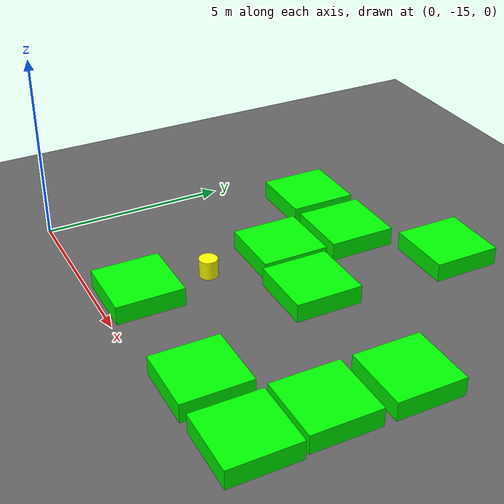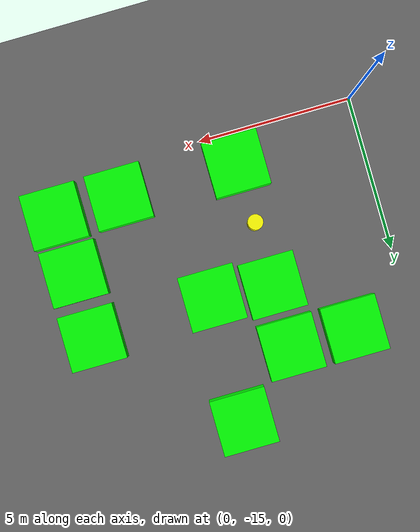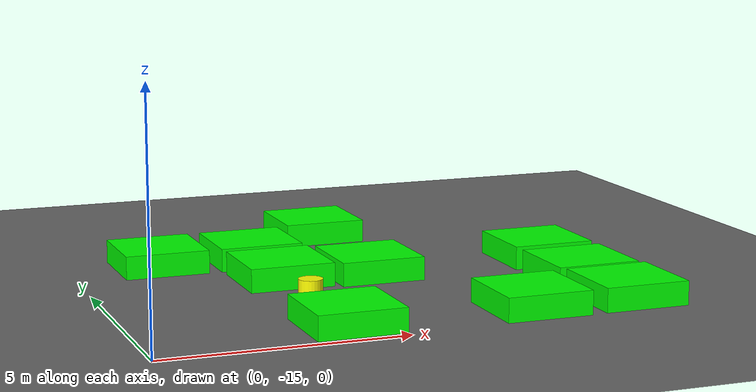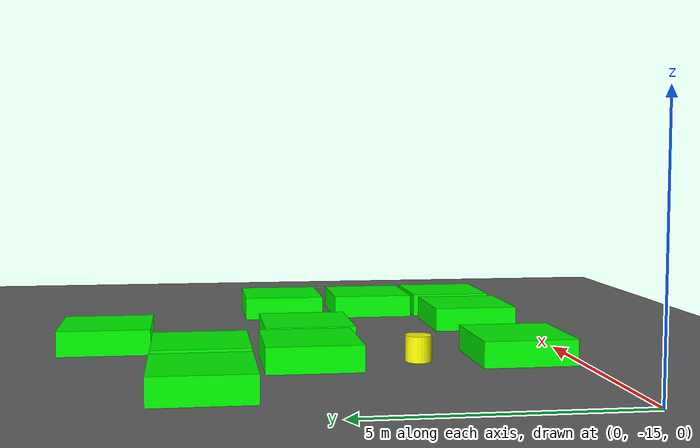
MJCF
<mujoco model="lvl5_corridor_obs10_dmid_depth1_seed2087">
    <compiler angle="degree" coordinate="local" inertiafromgeom="true"/>
    <option integrator="RK4" timestep="0.01"/>

    <asset>
        <texture builtin="gradient" height="100" rgb1="0.6 0.8 1" rgb2="0 0 0" type="skybox" width="100"/>
        <texture name="floor_texture" type="2d" builtin="checker" width="100" height="100" rgb1="0 0 0" rgb2="0.8 0.8 0.8"/>
        <material name="MatPlane" reflectance="0.5" shininess="1" specular="1" texrepeat="10 10" texture="floor_texture"/>
    </asset>

    <!-- Excluding the contact between the agent and the goal, and the agent and the floor -->
    <contact>
        <exclude body1="agent" body2="goal"/>
        <exclude body1 = "agent" body2 = "floor"/>
    </contact>

    <extension>
        <plugin plugin = "mujoco.pid">
            <instance name = "pid1">
                <config key="kp" value="2"/>
                <config key="ki" value="0"/>
                <config key="kd" value="55"/>
            </instance>
        </plugin>
    </extension>

    <worldbody>
        <light cutoff="100" diffuse="1 1 1" dir="-0 0 -1.3" directional="true" exponent="1" pos="0 0 1.3" specular=".1 .1 .1"/>
        <body name="floor" pos="0 0 0">
            <geom name="floor_geom" type="plane" size="20 20 0.1" material="MatPlane"/>
        </body>

                <body name="goal" pos="0.0000 0.0000 0">
            <geom name="goal_geom" type="plane" size="0.5 0.5 1" pos="0 0 0" rgba="1 0 0 1"/>
        </body>

                <body name="agent" pos="4.0000 -12.0000 0.250">
            <joint name="j1" type="slide" axis ="1 0 0 "/>
            <joint name="j2" type="slide" axis ="0 1 0 "/>
            <geom name="agent_geom" type="cylinder" size="0.25 0.25 0.250" rgba="1 1 0 1"/>
        </body>

        <body name="obstacle1" pos="6.0698 -6.0573 0.250">  <geom name="obstacle1_geom" type="box" size="0.9000 0.9000 0.250" rgba="0 1 0 1"/></body>
        <body name="obstacle2" pos="1.9182 -7.9083 0.250">  <geom name="obstacle2_geom" type="box" size="0.9000 0.9000 0.250" rgba="0 1 0 1"/></body>
        <body name="obstacle3" pos="3.9938 -7.9126 0.250">  <geom name="obstacle3_geom" type="box" size="0.9000 0.9000 0.250" rgba="0 1 0 1"/></body>
        <body name="obstacle4" pos="4.0242 -9.9426 0.250">  <geom name="obstacle4_geom" type="box" size="0.9000 0.9000 0.250" rgba="0 1 0 1"/></body>
        <body name="obstacle5" pos="5.9610 -10.0810 0.250">  <geom name="obstacle5_geom" type="box" size="0.9000 0.9000 0.250" rgba="0 1 0 1"/></body>
        <body name="obstacle6" pos="9.9489 -9.9165 0.250">  <geom name="obstacle6_geom" type="box" size="0.9000 0.9000 0.250" rgba="0 1 0 1"/></body>
        <body name="obstacle7" pos="9.9559 -12.0223 0.250">  <geom name="obstacle7_geom" type="box" size="0.9000 0.9000 0.250" rgba="0 1 0 1"/></body>
        <body name="obstacle8" pos="4.0730 -13.9468 0.250">  <geom name="obstacle8_geom" type="box" size="0.9000 0.9000 0.250" rgba="0 1 0 1"/></body>
        <body name="obstacle9" pos="7.9141 -13.9673 0.250">  <geom name="obstacle9_geom" type="box" size="0.9000 0.9000 0.250" rgba="0 1 0 1"/></body>
        <body name="obstacle10" pos="10.0424 -13.9347 0.250">  <geom name="obstacle10_geom" type="box" size="0.9000 0.9000 0.250" rgba="0 1 0 1"/></body>

    </worldbody>

    <sensor>
<!-- SENSORS -->

        <distance name="dist1" geom1="agent_geom" geom2="obstacle1_geom" cutoff="1.5"/>
        <distance name="dist2" geom1="agent_geom" geom2="obstacle2_geom" cutoff="1.5"/>
        <distance name="dist3" geom1="agent_geom" geom2="obstacle3_geom" cutoff="1.5"/>
        <distance name="dist4" geom1="agent_geom" geom2="obstacle4_geom" cutoff="1.5"/>
        <distance name="dist5" geom1="agent_geom" geom2="obstacle5_geom" cutoff="1.5"/>
        <distance name="dist6" geom1="agent_geom" geom2="obstacle6_geom" cutoff="1.5"/>
        <distance name="dist7" geom1="agent_geom" geom2="obstacle7_geom" cutoff="1.5"/>
        <distance name="dist8" geom1="agent_geom" geom2="obstacle8_geom" cutoff="1.5"/>
        <distance name="dist9" geom1="agent_geom" geom2="obstacle9_geom" cutoff="1.5"/>
        <distance name="dist10" geom1="agent_geom" geom2="obstacle10_geom" cutoff="1.5"/>
</sensor>

    <actuator>
        <plugin joint="j1" plugin="mujoco.pid" instance="pid1" />
        <plugin joint="j2" plugin="mujoco.pid" instance="pid1"/>
    </actuator>
</mujoco>
